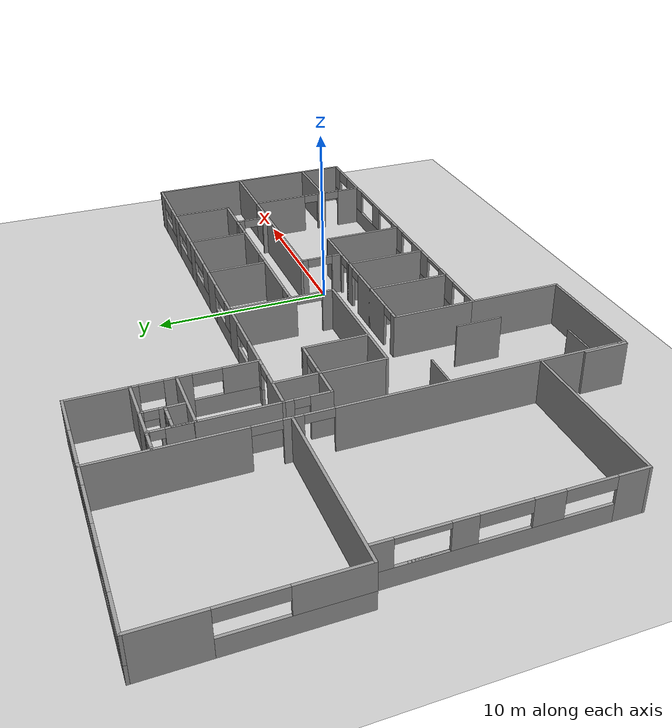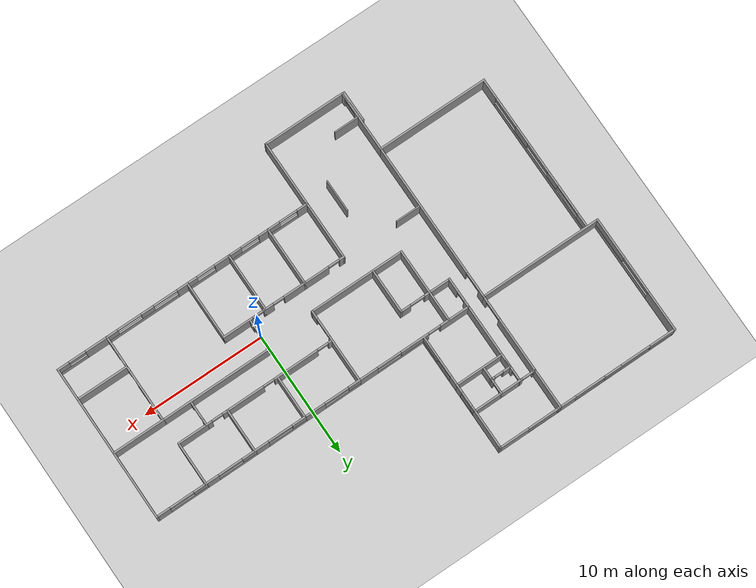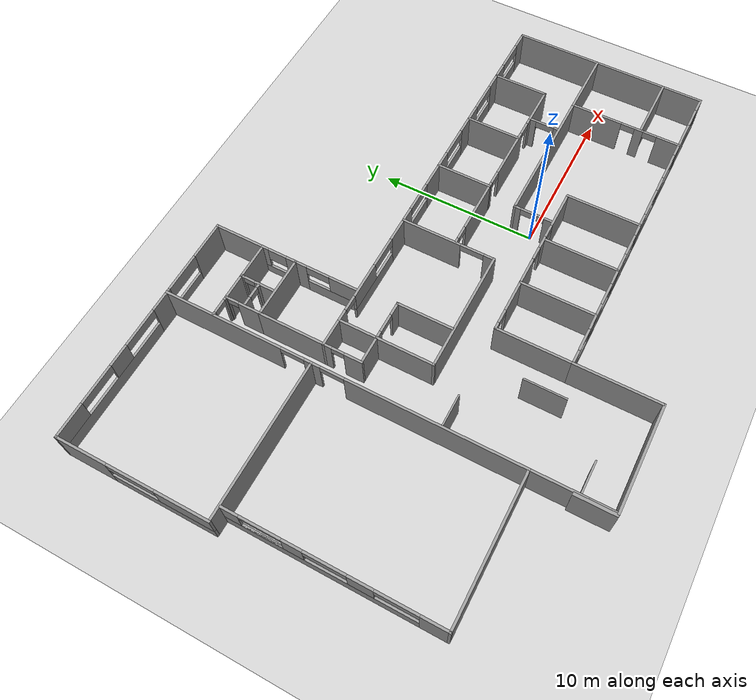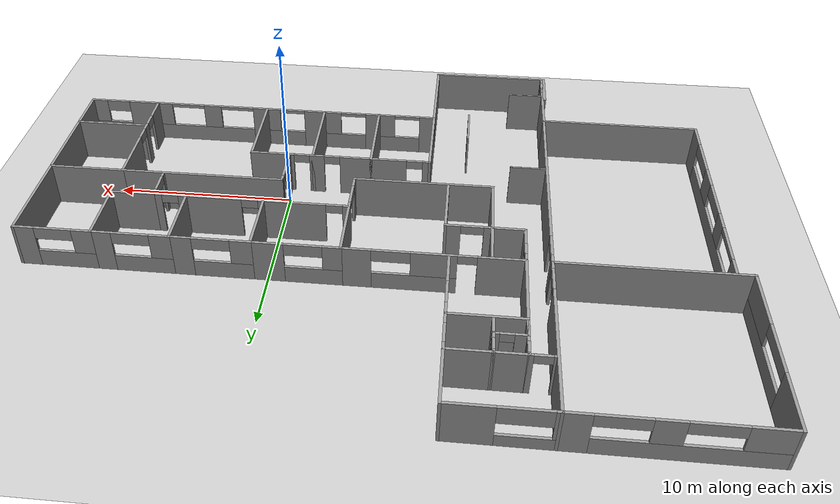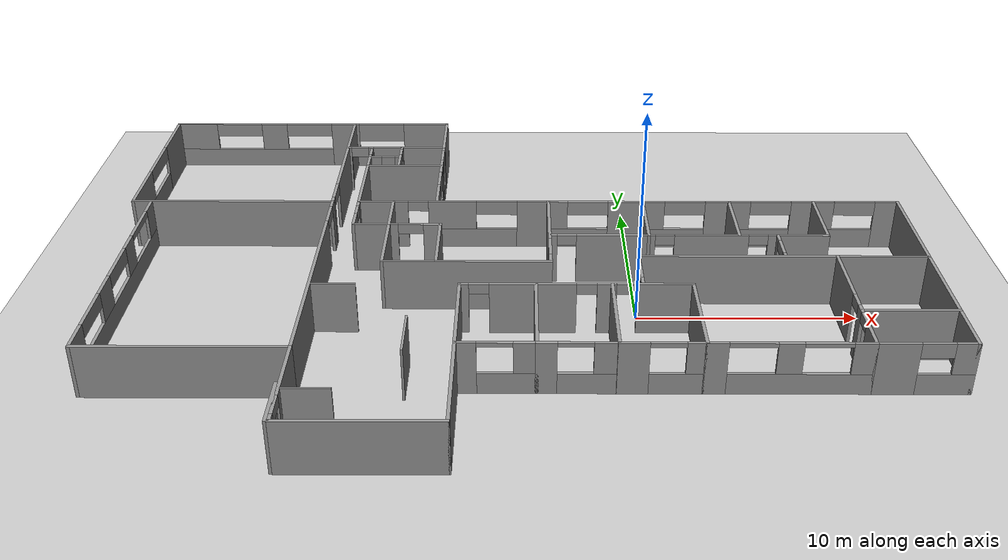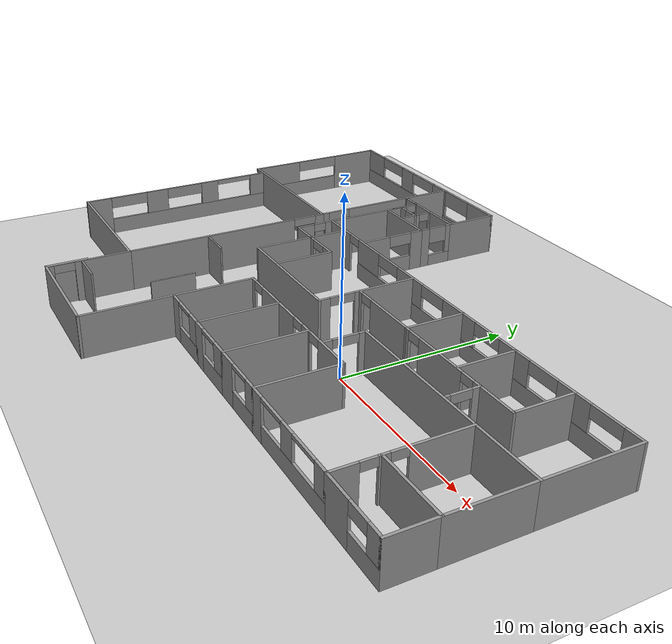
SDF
<sdf version="1.5">
 <world name="default">
  <include><uri>model://sun</uri></include>
  <include><uri>model://ground_plane</uri></include>
  <include><uri>model://CentroPiaggio</uri><name>CentroPiaggioMap</name></include>
 </world>
</sdf>
